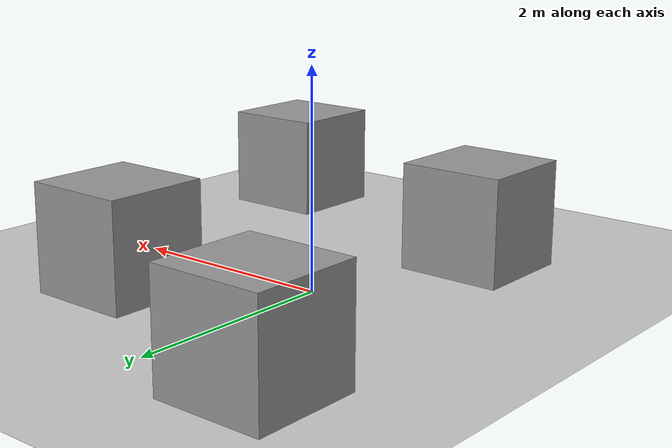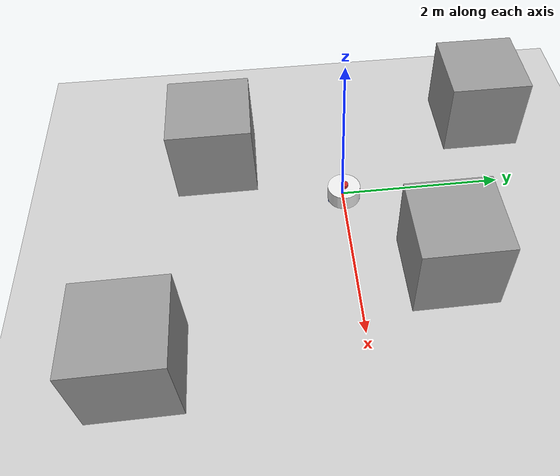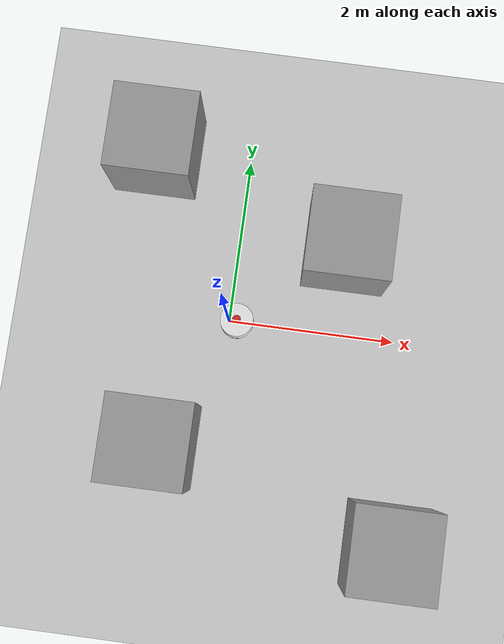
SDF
<sdf version="1.7">
 <world name="default">
  <light name="sun" type="directional">
   <pose>0 0 10 0 -0 0</pose>
   <diffuse>0.8 0.8 0.8 1</diffuse>
   <specular>0.2 0.2 0.2 1</specular>
   <attenuation>
    <range>1000</range>
    <constant>0.9</constant>
    <linear>0.01</linear>
    <quadratic>0.001</quadratic>
   </attenuation>
   <direction>-0.5 0.1 -0.9</direction>
   <spot><inner_angle>0</inner_angle><outer_angle>0</outer_angle><falloff>0</falloff></spot>
  </light>
  <model name="ground_plane">
   <static>1</static>
   <link name="link">
    <collision name="collision">
     <geometry><plane><normal>0 0 1</normal><size>100 100</size></plane></geometry>
     <surface>
      <contact><collide_bitmask>65535</collide_bitmask></contact>
      <friction><ode><mu>100</mu><mu2>50</mu2></ode></friction>
     </surface>
    </collision>
    <visual name="visual">
     <cast_shadows>0</cast_shadows>
     <geometry><plane><normal>0 0 1</normal><size>100 100</size></plane></geometry>
     <material>
      <script><uri>file://media/materials/scripts/gazebo.material</uri><name>Gazebo/Grey</name></script>
     </material>
    </visual>
   </link>
  </model>
  <gravity>0 0 -9.8</gravity>
  <magnetic_field>6e-06 2.3e-05 -4.2e-05</magnetic_field>
  <atmosphere type="adiabatic"/>
  <physics type="ode">
   <max_step_size>0.001</max_step_size>
   <real_time_factor>1</real_time_factor>
   <real_time_update_rate>1000</real_time_update_rate>
  </physics>
  <scene><ambient>0.4 0.4 0.4 1</ambient><background>0.7 0.7 0.7 1</background><shadows>1</shadows></scene>
  <spherical_coordinates>
   <surface_model>EARTH_WGS84</surface_model>
   <latitude_deg>0</latitude_deg>
   <longitude_deg>0</longitude_deg>
   <elevation>0</elevation>
   <heading_deg>0</heading_deg>
  </spherical_coordinates>
  <model name="my_bot">
   <link name="base_link">
    <inertial>
     <pose>0.155714 0 0.085 0 -0 0</pose>
     <mass>0.7</mass>
     <inertia>
      <ixx>0.0094375</ixx>
      <ixy>0</ixy>
      <ixz>0.00144</ixz>
      <iyy>0.013808</iyy>
      <iyz>0</iyz>
      <izz>0.00459548</izz>
     </inertia>
    </inertial>
    <collision name="base_link_fixed_joint_lump__chassis_collision">
     <pose>0.1 0 0.1 0 -0 0</pose>
     <geometry><cylinder><length>0.2</length><radius>0.2</radius></cylinder></geometry>
    </collision>
    <collision name="base_link_fixed_joint_lump__back_caster_wheel_collision_1">
     <pose>-0.035 0 0 0 -0 0</pose>
     <geometry><sphere><radius>0.05</radius></sphere></geometry>
     <surface><friction><ode><mu>0.001</mu><mu2>0.001</mu2></ode></friction></surface>
    </collision>
    <collision name="base_link_fixed_joint_lump__front_caster_wheel_collision_2">
     <pose>0.24 0 0 0 -0 0</pose>
     <geometry><sphere><radius>0.05</radius></sphere></geometry>
     <surface><friction><ode><mu>0.001</mu><mu2>0.001</mu2></ode></friction></surface>
    </collision>
    <collision name="base_link_fixed_joint_lump__laser_frame_collision_3">
     <pose>0.1 0 0.22 0 -0 0</pose>
     <geometry><cylinder><length>0.04</length><radius>0.05</radius></cylinder></geometry>
    </collision>
    <visual name="base_link_fixed_joint_lump__chassis_visual">
     <pose>0.1 0 0.1 0 -0 0</pose>
     <geometry><cylinder><length>0.2</length><radius>0.2</radius></cylinder></geometry>
     <material>
      <script><name>Gazebo/White</name><uri>file://media/materials/scripts/gazebo.material</uri></script>
     </material>
    </visual>
    <visual name="base_link_fixed_joint_lump__back_caster_wheel_visual_1">
     <pose>-0.035 0 0 0 -0 0</pose>
     <geometry><sphere><radius>0.05</radius></sphere></geometry>
     <material>
      <script><name>Gazebo/Black</name><uri>file://media/materials/scripts/gazebo.material</uri></script>
     </material>
    </visual>
    <visual name="base_link_fixed_joint_lump__front_caster_wheel_visual_2">
     <pose>0.24 0 0 0 -0 0</pose>
     <geometry><sphere><radius>0.05</radius></sphere></geometry>
     <material>
      <script><name>Gazebo/Black</name><uri>file://media/materials/scripts/gazebo.material</uri></script>
     </material>
    </visual>
    <visual name="base_link_fixed_joint_lump__laser_frame_visual_3">
     <pose>0.1 0 0.22 0 -0 0</pose>
     <geometry><cylinder><length>0.04</length><radius>0.05</radius></cylinder></geometry>
     <material>
      <script><name>Gazebo/Red</name><uri>file://media/materials/scripts/gazebo.material</uri></script>
     </material>
    </visual>
    <sensor name="laser" type="ray">
     <visualize>1</visualize>
     <update_rate>10</update_rate>
     <ray>
      <scan>
       <horizontal>
        <samples>360</samples>
        <min_angle>-3.14</min_angle>
        <max_angle>3.14</max_angle>
        <resolution>1</resolution>
       </horizontal>
       <vertical><samples>1</samples><min_angle>0</min_angle><max_angle>0</max_angle></vertical>
      </scan>
      <range><min>0.3</min><max>12</max></range>
     </ray>
     <plugin name="laser_controller" filename="libgazebo_ros_ray_sensor.so">
      <ros><argument>~/out:=scan</argument></ros>
      <output_type>sensor_msgs/LaserScan</output_type>
      <frame_name>laser_frame</frame_name>
     </plugin>
     <pose>0.1 0 0.22 0 -0 0</pose>
    </sensor>
   </link>
   <joint name="left_wheel_joint" type="revolute">
    <pose relative_to="base_link">0.1 0.175 0 -1.5708 0 0</pose>
    <parent>base_link</parent>
    <child>left_wheel</child>
    <axis>
     <xyz>0 0 1</xyz>
     <limit><lower>-1e+16</lower><upper>1e+16</upper></limit>
     <dynamics><spring_reference>0</spring_reference><spring_stiffness>0</spring_stiffness></dynamics>
    </axis>
   </joint>
   <link name="left_wheel">
    <pose relative_to="left_wheel_joint">0 0 0 0 -0 0</pose>
    <inertial>
     <mass>0.1</mass>
     <inertia>
      <ixx>7.58333e-05</ixx>
      <ixy>0</ixy>
      <ixz>0</ixz>
      <iyy>7.58333e-05</iyy>
      <iyz>0</iyz>
      <izz>0.000125</izz>
     </inertia>
    </inertial>
    <collision name="left_wheel_collision">
     <geometry><cylinder><length>0.04</length><radius>0.05</radius></cylinder></geometry>
    </collision>
    <visual name="left_wheel_visual">
     <geometry><cylinder><length>0.04</length><radius>0.05</radius></cylinder></geometry>
     <material>
      <script><name>Gazebo/Blue</name><uri>file://media/materials/scripts/gazebo.material</uri></script>
     </material>
    </visual>
   </link>
   <joint name="right_wheel_joint" type="revolute">
    <pose relative_to="base_link">0.1 -0.175 0 1.5708 -0 0</pose>
    <parent>base_link</parent>
    <child>right_wheel</child>
    <axis>
     <xyz>0 0 -1</xyz>
     <limit><lower>-1e+16</lower><upper>1e+16</upper></limit>
     <dynamics><spring_reference>0</spring_reference><spring_stiffness>0</spring_stiffness></dynamics>
    </axis>
   </joint>
   <link name="right_wheel">
    <pose relative_to="right_wheel_joint">0 0 0 0 -0 0</pose>
    <inertial>
     <mass>0.1</mass>
     <inertia>
      <ixx>7.58333e-05</ixx>
      <ixy>0</ixy>
      <ixz>0</ixz>
      <iyy>7.58333e-05</iyy>
      <iyz>0</iyz>
      <izz>0.000125</izz>
     </inertia>
    </inertial>
    <collision name="right_wheel_collision">
     <geometry><cylinder><length>0.04</length><radius>0.05</radius></cylinder></geometry>
    </collision>
    <visual name="right_wheel_visual">
     <geometry><cylinder><length>0.04</length><radius>0.05</radius></cylinder></geometry>
     <material>
      <script><name>Gazebo/Blue</name><uri>file://media/materials/scripts/gazebo.material</uri></script>
     </material>
    </visual>
   </link>
   <static>0</static>
   <plugin name="diff_drive" filename="libgazebo_ros_diff_drive.so">
    <left_joint>left_wheel_joint</left_joint>
    <right_joint>right_wheel_joint</right_joint>
    <wheel_separation>0.35</wheel_separation>
    <wheel_diameter>0.1</wheel_diameter>
    <max_wheel_torque>200</max_wheel_torque>
    <max_wheel_acceleration>10.0</max_wheel_acceleration>
    <odometry_frame>odom</odometry_frame>
    <robot_base_frame>base_link</robot_base_frame>
    <publish_odom>1</publish_odom>
    <publish_odom_tf>1</publish_odom_tf>
    <publish_wheel_tf>1</publish_wheel_tf>
   </plugin>
   <pose>-0.002918 -1.9e-05 0.05 0 -0 0.000922</pose>
  </model>
  <model name="unit_box">
   <pose>1.29449 1.05055 0.499995 -1e-05 -0 -0</pose>
   <link name="link">
    <inertial>
     <mass>1</mass>
     <inertia>
      <ixx>0.166667</ixx>
      <ixy>0</ixy>
      <ixz>0</ixz>
      <iyy>0.166667</iyy>
      <iyz>0</iyz>
      <izz>0.166667</izz>
     </inertia>
    </inertial>
    <collision name="collision"><geometry><box><size>1 1 1</size></box></geometry></collision>
    <visual name="visual">
     <geometry><box><size>1 1 1</size></box></geometry>
     <material>
      <script><name>Gazebo/Grey</name><uri>file://media/materials/scripts/gazebo.material</uri></script>
     </material>
    </visual>
   </link>
  </model>
  <model name="unit_box_0">
   <pose>2.18486 -2.41228 0.499995 0 1e-05 0</pose>
   <link name="link">
    <inertial>
     <mass>1</mass>
     <inertia>
      <ixx>0.166667</ixx>
      <ixy>0</ixy>
      <ixz>0</ixz>
      <iyy>0.166667</iyy>
      <iyz>0</iyz>
      <izz>0.166667</izz>
     </inertia>
    </inertial>
    <collision name="collision"><geometry><box><size>1 1 1</size></box></geometry></collision>
    <visual name="visual">
     <geometry><box><size>1 1 1</size></box></geometry>
     <material>
      <script><name>Gazebo/Grey</name><uri>file://media/materials/scripts/gazebo.material</uri></script>
     </material>
    </visual>
   </link>
  </model>
  <model name="unit_box_1">
   <pose>-0.687983 -1.56848 0.499995 -1e-05 -0 0</pose>
   <link name="link">
    <inertial>
     <mass>1</mass>
     <inertia>
      <ixx>0.166667</ixx>
      <ixy>0</ixy>
      <ixz>0</ixz>
      <iyy>0.166667</iyy>
      <iyz>0</iyz>
      <izz>0.166667</izz>
     </inertia>
    </inertial>
    <collision name="collision"><geometry><box><size>1 1 1</size></box></geometry></collision>
    <visual name="visual">
     <geometry><box><size>1 1 1</size></box></geometry>
     <material>
      <script><name>Gazebo/Grey</name><uri>file://media/materials/scripts/gazebo.material</uri></script>
     </material>
    </visual>
   </link>
  </model>
  <model name="unit_box_2">
   <pose>-1.1274 1.95342 0.5 0 -0 0</pose>
   <link name="link">
    <inertial>
     <mass>1</mass>
     <inertia>
      <ixx>0.166667</ixx>
      <ixy>0</ixy>
      <ixz>0</ixz>
      <iyy>0.166667</iyy>
      <iyz>0</iyz>
      <izz>0.166667</izz>
     </inertia>
    </inertial>
    <collision name="collision"><geometry><box><size>1 1 1</size></box></geometry></collision>
    <visual name="visual">
     <geometry><box><size>1 1 1</size></box></geometry>
     <material>
      <script><name>Gazebo/Grey</name><uri>file://media/materials/scripts/gazebo.material</uri></script>
     </material>
    </visual>
   </link>
  </model>
 </world>
</sdf>
